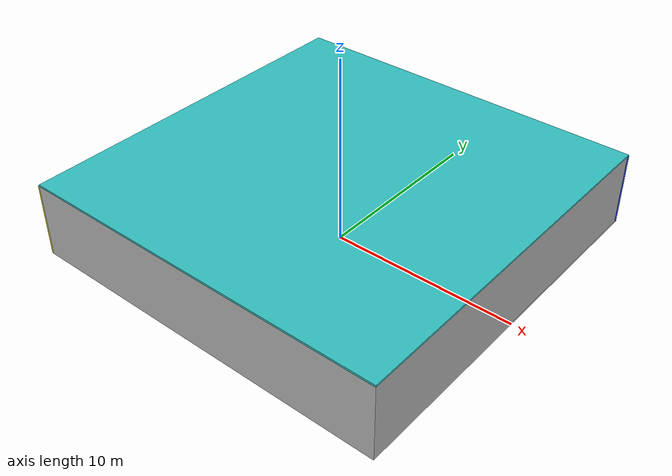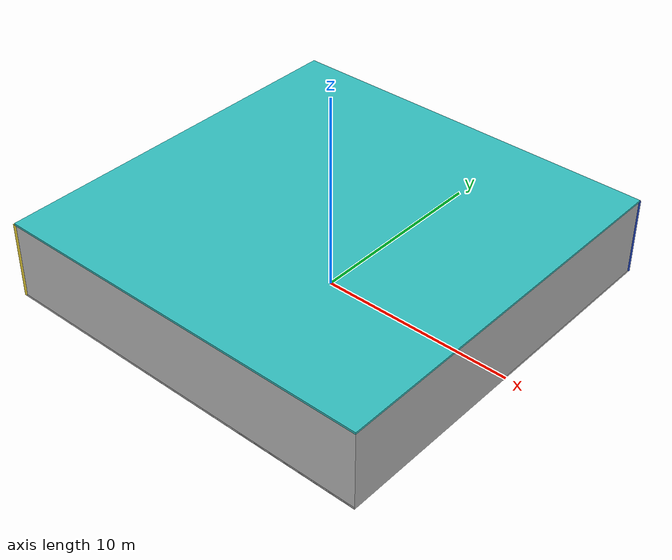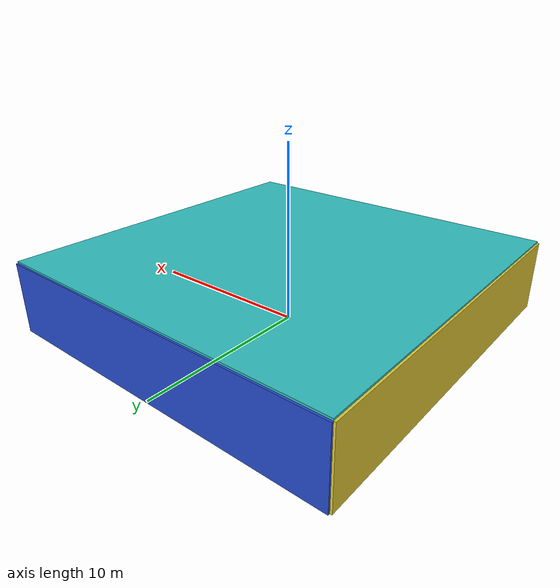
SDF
<sdf version="1.4">
 <world name="default">
  <physics type="ode">
   <max_step_size>0.001</max_step_size>
   <real_time_factor>1</real_time_factor>
   <real_time_update_rate>1000</real_time_update_rate>
   <gravity>0 0 -9.8</gravity>
  </physics>
  <scene><ambient>0.4 0.4 0.4 1</ambient><background>0.7 0.7 0.7 1</background><shadows>1</shadows></scene>
  <model name="Surrounding">
   <static>1</static>
   <link name="Ceiling">
    <collision name="Ceiling_Collision"><geometry><box><size>20 20 0.1</size></box></geometry></collision>
    <visual name="Ceiling_Visual">
     <geometry><box><size>20 20 0.1</size></box></geometry>
     <material>
      <script>
       <uri>file://media/materials/scripts/gazebo.material</uri>
       <name>Gazebo/TurquoiseGlowOutline</name>
      </script>
     </material>
    </visual>
    <pose>0 0 4.05 0 0 0</pose>
   </link>
   <link name="Wall_South">
    <collision name="Wall_South_Collision">
     <geometry><box><size>20 0 4</size></box></geometry>
     <pose>0 0 2 0 -0 0</pose>
    </collision>
    <visual name="Wall_South_Visual">
     <pose>0 0 2 0 -0 0</pose>
     <geometry><box><size>20 0 4</size></box></geometry>
     <material>
      <script><uri>file://media/materials/scripts/gazebo.material</uri><name>Gazebo/CloudySky</name></script>
     </material>
    </visual>
    <velocity_decay><linear>0</linear><angular>0</angular></velocity_decay>
    <pose>0 -10 0 0 -0 0</pose>
   </link>
   <link name="Wall_East">
    <collision name="Wall_21_Collision">
     <geometry><box><size>20 0 4</size></box></geometry>
     <pose>0 0 2 0 -0 0</pose>
    </collision>
    <visual name="Wall_21_Visual">
     <pose>0 0 2 0 -0 0</pose>
     <geometry><box><size>20 0 4</size></box></geometry>
     <material>
      <script><uri>file://media/materials/scripts/gazebo.material</uri><name>Gazebo/LightOff</name></script>
     </material>
    </visual>
    <velocity_decay><linear>0</linear><angular>0</angular></velocity_decay>
    <pose>10 0 0 0 -0 1.5708</pose>
   </link>
   <link name="Wall_North">
    <collision name="Wall_22_Collision">
     <geometry><box><size>20 0.2 4</size></box></geometry>
     <pose>0 0 2 0 -0 0</pose>
    </collision>
    <visual name="Wall_22_Visual">
     <pose>0 0 2 0 -0 0</pose>
     <geometry><box><size>20 0.2 4</size></box></geometry>
     <material>
      <script><uri>file://media/materials/scripts/gazebo.material</uri><name>Gazebo/BlueGlow</name></script>
     </material>
    </visual>
    <velocity_decay><linear>0</linear><angular>0</angular></velocity_decay>
    <pose>0 10 0 0 -0 0</pose>
   </link>
   <link name="Wall_West">
    <collision name="Wall_23_Collision">
     <geometry><box><size>20 0.2 4</size></box></geometry>
     <pose>0 0 2 0 -0 0</pose>
    </collision>
    <visual name="Wall_23_Visual">
     <pose>0 0 2 0 -0 0</pose>
     <geometry><box><size>20 0.2 4</size></box></geometry>
     <material>
      <script><uri>file://media/materials/scripts/gazebo.material</uri><name>Gazebo/ZincYellow</name></script>
     </material>
    </visual>
    <velocity_decay><linear>0</linear><angular>0</angular></velocity_decay>
    <pose>-10 0 0 0 0 -1.5708</pose>
   </link>
   <link name="Ground_link">
    <collision name="collision">
     <pose>0 0 .05 0 -0 0</pose>
     <geometry><box><size>20 20 0.1</size></box></geometry>
    </collision>
    <visual name="visual">
     <pose>0 0 .05 0 -0 0</pose>
     <geometry><box><size>20 20 0.1</size></box></geometry>
     <material>
      <script><uri>file://media/materials/scripts/gazebo.material</uri><name>Gazebo/JointAnchor</name></script>
     </material>
    </visual>
   </link>
   <static>1</static>
  </model>
  <spherical_coordinates>
   <surface_model>EARTH_WGS84</surface_model>
   <latitude_deg>0</latitude_deg>
   <longitude_deg>0</longitude_deg>
   <elevation>0</elevation>
   <heading_deg>0</heading_deg>
  </spherical_coordinates>
  <light name="lightball_0" type="diffuse">
   <diffuse>0.8 0.8 0.8 1</diffuse>
   <specular>0.2 0.2 0.2 1</specular>
   <attenuation>
    <range>100</range>
    <constant>0.7</constant>
    <linear>0.01</linear>
    <quadratic>0.001</quadratic>
   </attenuation>
   <direction>-0.5 0.1 -0.9</direction>
   <pose>-5.85254024185 4.7827671108 0.616093672756 0 0 0</pose>
  </light>
  <light name="lightball_1" type="diffuse">
   <diffuse>0.8 0.8 0.8 1</diffuse>
   <specular>0.2 0.2 0.2 1</specular>
   <attenuation>
    <range>100</range>
    <constant>0.7</constant>
    <linear>0.01</linear>
    <quadratic>0.001</quadratic>
   </attenuation>
   <direction>-0.5 0.1 -0.9</direction>
   <pose>-8.22067715973 7.66281799985 2.44310641799 0 0 0</pose>
  </light>
  <light name="lightball_2" type="diffuse">
   <diffuse>0.8 0.8 0.8 1</diffuse>
   <specular>0.2 0.2 0.2 1</specular>
   <attenuation>
    <range>100</range>
    <constant>0.7</constant>
    <linear>0.01</linear>
    <quadratic>0.001</quadratic>
   </attenuation>
   <direction>-0.5 0.1 -0.9</direction>
   <pose>-3.05524675621 0.0426225849514 1.56504536896 0 0 0</pose>
  </light>
  <light name="lightball_3" type="diffuse">
   <diffuse>0.8 0.8 0.8 1</diffuse>
   <specular>0.2 0.2 0.2 1</specular>
   <attenuation>
    <range>100</range>
    <constant>0.7</constant>
    <linear>0.01</linear>
    <quadratic>0.001</quadratic>
   </attenuation>
   <direction>-0.5 0.1 -0.9</direction>
   <pose>-2.33574567527 -1.50722217501 3.75665262609 0 0 0</pose>
  </light>
  <light name="lightball_4" type="diffuse">
   <diffuse>0.8 0.8 0.8 1</diffuse>
   <specular>0.2 0.2 0.2 1</specular>
   <attenuation>
    <range>100</range>
    <constant>0.7</constant>
    <linear>0.01</linear>
    <quadratic>0.001</quadratic>
   </attenuation>
   <direction>-0.5 0.1 -0.9</direction>
   <pose>1.83301019582 -8.81260722673 0.523156013548 0 0 0</pose>
  </light>
  <light name="lightball_5" type="diffuse">
   <diffuse>0.8 0.8 0.8 1</diffuse>
   <specular>0.2 0.2 0.2 1</specular>
   <attenuation>
    <range>100</range>
    <constant>0.7</constant>
    <linear>0.01</linear>
    <quadratic>0.001</quadratic>
   </attenuation>
   <direction>-0.5 0.1 -0.9</direction>
   <pose>-7.17953612749 -7.92179831949 2.9804695837 0 0 0</pose>
  </light>
  <light name="lightball_6" type="diffuse">
   <diffuse>0.8 0.8 0.8 1</diffuse>
   <specular>0.2 0.2 0.2 1</specular>
   <attenuation>
    <range>100</range>
    <constant>0.7</constant>
    <linear>0.01</linear>
    <quadratic>0.001</quadratic>
   </attenuation>
   <direction>-0.5 0.1 -0.9</direction>
   <pose>-4.76522889201 7.20981652824 1.81147907034 0 0 0</pose>
  </light>
  <include><uri>model://table</uri><pose>-7.1754848926 1.04642425112 0 0 0 1.90479452165</pose></include>
  <include>
   <uri>model://robocup_3Dsim_goal</uri>
   <pose>-1.73975353046 -4.46615122436 0 0 0 1.08714531327</pose>
  </include>
  <include>
   <uri>model://robocup_3Dsim_goal</uri>
   <pose>-2.02000770597 3.33855668485 0 0 0 2.76881733375</pose>
  </include>
  <include>
   <uri>model://construction_cone</uri>
   <pose>5.19949098686 4.81168161421 0 0 0 2.34614970659</pose>
  </include>
 </world>
</sdf>

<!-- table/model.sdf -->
<sdf version="1.5">
  <model name="table">
    <static>true</static>
    <link name="link">
      <collision name="surface">
        <pose>0 0 1.0 0 0 0</pose>
        <geometry>
          <box>
            <size>1.5 0.8 0.03</size>
          </box>
        </geometry>
        <surface>
          <friction>
            <ode>
              <mu>0.6</mu>
              <mu2>0.6</mu2>
            </ode>
          </friction>
        </surface>
      </collision>
      <visual name="visual1">
        <pose>0 0 1.0 0 0 0</pose>
        <geometry>
          <box>
            <size>1.5 0.8 0.03</size>
          </box>
        </geometry>
        <material>
          <script>
            <uri>model://media/materials/scripts/gazebo.material</uri>
            <name>Gazebo/Wood</name>
          </script>
        </material>
      </visual>
      <collision name="front_left_leg">
        <pose>0.68 0.38 0.5 0 0 0</pose>
        <geometry>
          <cylinder>
            <radius>0.02</radius>
            <length>1.0</length>
          </cylinder>
        </geometry>
      </collision>
      <visual name="front_left_leg">
        <pose>0.68 0.38 0.5 0 0 0</pose>
        <geometry>
          <cylinder>
            <radius>0.02</radius>
            <length>1.0</length>
          </cylinder>
        </geometry>
        <material>
          <script>
            <uri>model://media/materials/scripts/gazebo.material</uri>
            <name>Gazebo/Grey</name>
          </script>
        </material>
      </visual>
      <collision name="front_right_leg">
        <pose>0.68 -0.38 0.5 0 0 0</pose>
        <geometry>
          <cylinder>
            <radius>0.02</radius>
            <length>1.0</length>
          </cylinder>
        </geometry>
      </collision>
      <visual name="front_right_leg">
        <pose>0.68 -0.38 0.5 0 0 0</pose>
        <geometry>
          <cylinder>
            <radius>0.02</radius>
            <length>1.0</length>
          </cylinder>
        </geometry>
        <material>
          <script>
            <uri>model://media/materials/scripts/gazebo.material</uri>
            <name>Gazebo/Grey</name>
          </script>
        </material>
      </visual>
      <collision name="back_right_leg">
        <pose>-0.68 -0.38 0.5 0 0 0</pose>
        <geometry>
          <cylinder>
            <radius>0.02</radius>
            <length>1.0</length>
          </cylinder>
        </geometry>
      </collision>
      <visual name="back_right_leg">
        <pose>-0.68 -0.38 0.5 0 0 0</pose>
        <geometry>
          <cylinder>
            <radius>0.02</radius>
            <length>1.0</length>
          </cylinder>
        </geometry>
        <material>
          <script>
            <uri>model://media/materials/scripts/gazebo.material</uri>
            <name>Gazebo/Grey</name>
          </script>
        </material>
      </visual>
      <collision name="back_left_leg">
        <pose>-0.68 0.38 0.5 0 0 0</pose>
        <geometry>
          <cylinder>
            <radius>0.02</radius>
            <length>1.0</length>
          </cylinder>
        </geometry>
      </collision>
      <visual name="back_left_leg">
        <pose>-0.68 0.38 0.5 0 0 0</pose>
        <geometry>
          <cylinder>
            <radius>0.02</radius>
            <length>1.0</length>
          </cylinder>
        </geometry>
        <material>
          <script>
            <uri>model://media/materials/scripts/gazebo.material</uri>
            <name>Gazebo/Grey</name>
          </script>
        </material>
      </visual>
    </link>
  </model>
</sdf>

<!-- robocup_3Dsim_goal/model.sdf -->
<sdf version="1.5">
  <model name="robocup_3d_goal">
    <static>true</static>
    <link name="left_post">
      <pose>0 1.05 0.45 0 0 0</pose>
      <collision name="collision">
        <geometry>
          <cylinder>
            <radius>0.05</radius>
            <length>0.9</length>
          </cylinder>
        </geometry>
      </collision>
      <visual name="visual">
        <geometry>
          <cylinder>
            <radius>0.05</radius>
            <length>0.9</length>
          </cylinder>
        </geometry>
        <material>
          <script>
            <uri>file://media/materials/scripts/gazebo.material</uri>
            <name>Gazebo/ZincYellow</name>
          </script>
        </material>
      </visual>
    </link>
    <link name="left_support_horiz_lower">
      <pose>0.30 1.05 0.01 0 0 0</pose>
      <collision name="collision">
        <geometry>
          <box>
            <size>0.50 0.02 0.02</size>
          </box>
        </geometry>
      </collision>
      <visual name="visual">
        <geometry>
          <box>
            <size>0.50 0.02 0.02</size>
          </box>
        </geometry>
        <material>
          <script>
            <uri>file://media/materials/scripts/gazebo.material</uri>
            <name>Gazebo/White</name>
          </script>
        </material>
      </visual>
    </link>
    <link name="left_support_horiz_upper">
      <pose>0.30 1.05 0.79 0 0 0</pose>
      <collision name="collision">
        <geometry>
          <box>
            <size>0.50 0.02 0.02</size>
          </box>
        </geometry>
      </collision>
      <visual name="visual">
        <geometry>
          <box>
            <size>0.50 0.02 0.02</size>
          </box>
        </geometry>
        <material>
          <script>
            <uri>file://media/materials/scripts/gazebo.material</uri>
            <name>Gazebo/White</name>
          </script>
        </material>
      </visual>
    </link>
    <link name="left_support_vertical">
      <pose>0.56 1.05 0.4 0 1.5708 0</pose>
      <collision name="collision">
        <geometry>
          <box>
            <size>0.80 0.02 0.02</size>
          </box>
        </geometry>
      </collision>
      <visual name="visual">
        <geometry>
          <box>
            <size>0.80 0.02 0.02</size>
          </box>
        </geometry>
        <material>
          <script>
            <uri>file://media/materials/scripts/gazebo.material</uri>
            <name>Gazebo/White</name>
          </script>
        </material>
      </visual>
    </link>
    <link name="right_support_horiz_lower">
      <pose>0.30 -1.05 0.01 0 0 0</pose>
      <collision name="collision">
        <geometry>
          <box>
            <size>0.50 0.02 0.02</size>
          </box>
        </geometry>
      </collision>
      <visual name="visual">
        <geometry>
          <box>
            <size>0.50 0.02 0.02</size>
          </box>
        </geometry>
        <material>
          <script>
            <uri>file://media/materials/scripts/gazebo.material</uri>
            <name>Gazebo/White</name>
          </script>
        </material>
      </visual>
    </link>
    <link name="right_support_horiz_upper">
      <pose>0.30 -1.05 0.79 0 0 0</pose>
      <collision name="collision">
        <geometry>
          <box>
            <size>0.50 0.02 0.02</size>
          </box>
        </geometry>
      </collision>
      <visual name="visual">
        <geometry>
          <box>
            <size>0.50 0.02 0.02</size>
          </box>
        </geometry>
        <material>
          <script>
            <uri>file://media/materials/scripts/gazebo.material</uri>
            <name>Gazebo/White</name>
          </script>
        </material>
      </visual>
    </link>
    <link name="right_support_vertical">
      <pose>0.56 -1.05 0.4 0 1.5708 0</pose>
      <collision name="collision">
        <geometry>
          <box>
            <size>0.80 0.02 0.02</size>
          </box>
        </geometry>
      </collision>
      <visual name="visual">
        <geometry>
          <box>
            <size>0.80 0.02 0.02</size>
          </box>
        </geometry>
        <material>
          <script>
            <uri>file://media/materials/scripts/gazebo.material</uri>
            <name>Gazebo/White</name>
          </script>
        </material>
      </visual>
    </link>
    <link name="center_support_horiz_lower">
      <pose>0.56 0 0.01 0 1.5708 0</pose>
      <collision name="collision">
        <geometry>
          <box>
            <size>0.02 2.08 0.02</size>
          </box>
        </geometry>
      </collision>
      <visual name="visual">
        <geometry>
          <box>
            <size>0.02 2.08 0.02</size>
          </box>
        </geometry>
        <material>
          <script>
            <uri>file://media/materials/scripts/gazebo.material</uri>
            <name>Gazebo/White</name>
          </script>
        </material>
      </visual>
    </link>
    <link name="center_support_horiz_upper">
      <pose>0.56 0 0.79 0 1.5708 0</pose>
      <collision name="collision">
        <geometry>
          <box>
            <size>0.02 2.08 0.02</size>
          </box>
        </geometry>
      </collision>
      <visual name="visual">
        <geometry>
          <box>
            <size>0.02 2.08 0.02</size>
          </box>
        </geometry>
        <material>
          <script>
            <uri>file://media/materials/scripts/gazebo.material</uri>
            <name>Gazebo/White</name>
          </script>
        </material>
      </visual>
    </link>
    <link name="right_post">
      <pose>0 -1.05 0.45 0 0 0</pose>
      <collision name="collision">
        <geometry>
          <cylinder>
            <radius>0.05</radius>
            <length>0.9</length>
          </cylinder>
        </geometry>
      </collision>
      <visual name="visual">
        <geometry>
          <cylinder>
            <radius>0.05</radius>
            <length>0.9</length>
          </cylinder>
        </geometry>
        <material>
          <script>
            <uri>file://media/materials/scripts/gazebo.material</uri>
            <name>Gazebo/ZincYellow</name>
          </script>
        </material>
      </visual>
    </link>
    <link name="crossbar">
      <pose>0 0 0.85 1.57 1.57 0</pose>
      <collision name="collision">
        <geometry>
          <cylinder>
            <radius>0.05</radius>
            <length>2.0</length>
          </cylinder>
        </geometry>
      </collision>
      <visual name="visual">
        <geometry>
          <cylinder>
            <radius>0.05</radius>
            <length>2.0</length>
          </cylinder>
        </geometry>
        <material>
          <script>
            <uri>file://media/materials/scripts/gazebo.material</uri>
            <name>Gazebo/ZincYellow</name>
          </script>
        </material>
      </visual>
    </link>
    <link name="center_net">
      <pose>0.56 0 0.40 0 0 0</pose>
      <collision name="collision">
        <geometry>
          <box>
            <size>0.01 2.1 0.80</size>
          </box>
        </geometry>
      </collision>
      <visual name="visual">
        <geometry>
          <box>
            <size>0.01 2.1 0.80</size>
          </box>
        </geometry>
        <material>
          <script>
            <uri>model://../model_source/models/robocup09_spl_field/materials/scripts/</uri>
            <uri>model://../model_source/models/robocup09_spl_field/materials/textures/</uri>
            <name>RoboCup/Net</name>
          </script>
        </material>
      </visual>
    </link>
    <link name="left_net">
      <pose>0.30 1.05 0.40 0 0 0</pose>
      <collision name="collision">
        <geometry>
          <box>
            <size>0.50 0.01 0.76</size>
          </box>
        </geometry>
      </collision>
      <visual name="visual">
        <geometry>
          <box>
            <size>0.50 0.01 0.76</size>
          </box>
        </geometry>
        <material>
          <script>
            <uri>model://../model_source/models/robocup09_spl_field/materials/scripts/</uri>
            <uri>model://../model_source/models/robocup09_spl_field/materials/textures/</uri>
            <name>RoboCup/Net</name>
          </script>
        </material>
      </visual>
    </link>
    <link name="right_net">
      <pose>0.30 -1.05 0.40 0 0 0</pose>
      <collision name="collision">
        <geometry>
          <box>
            <size>0.50 0.01 0.76</size>
          </box>
        </geometry>
      </collision>
      <visual name="visual">
        <geometry>
          <box>
            <size>0.50 0.01 0.76</size>
          </box>
        </geometry>
        <material>
          <script>
            <uri>model://../model_source/models/robocup09_spl_field/materials/scripts/</uri>
            <uri>model://../model_source/models/robocup09_spl_field/materials/textures/</uri>
            <name>RoboCup/Net</name>
          </script>
        </material>
      </visual>
    </link>
  </model>
</sdf>

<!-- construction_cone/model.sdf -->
<sdf version="1.5">
  <model name="Construction Cone">
    <link name="link">
      <collision name="collision">
        <geometry>
          <mesh>
            <scale>10 10 10</scale>
            <uri>file://isr-testbed/construction_cone/meshes/construction_cone.dae</uri>
          </mesh>
        </geometry>
      </collision>
      <visual name="visual">
        <geometry>
          <mesh>
            <scale>10 10 10</scale>
            <uri>file://isr-testbed/construction_cone/meshes/construction_cone.dae</uri>
          </mesh>
        </geometry>
      </visual>
    </link>
  </model>
</sdf>
